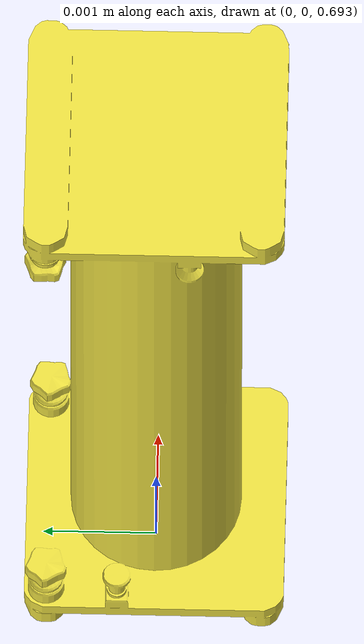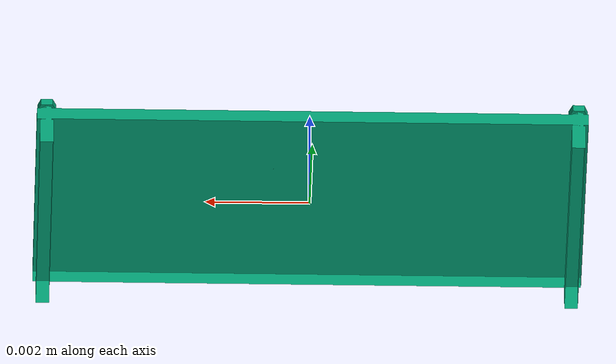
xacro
<?xml version="1.0"?>
<robot>

  <link name="world"/>
  <link name="dummy">
    <inertial>
      <mass value="1"/>
      <inertia ixx="1" ixy="0.0" ixz="0.0" iyy="1" iyz="0.0" izz="1"/>
    </inertial>
  </link>
  <link name="baseplate">
    <visual>
      <geometry>
        <mesh filename="package://r2_description/meshes/Stanchion_Baseplate.dae"/>
      </geometry>
      <origin xyz="0.0 0.0 0.0" rpy="1.57 0 1.57"/>
    </visual>
    <collision>
      <geometry>
        <mesh filename="package://r2_description/meshes/Stanchion_Baseplate.dae" scale=".01 .01 .01"/>
      </geometry>
      <origin xyz="0.0 0.0 0.0" rpy="1.57 0 1.57"/>
    </collision>
    <inertial>
      <mass value="5"/>
      <inertia ixx="1" ixy="0.0" ixz="0.0" iyy="1" iyz="0.0" izz="1"/>
    </inertial>
  </link>

  <link name="base">
    <visual>
      <geometry>
        <mesh filename="package://r2_description/meshes/Stanchion.dae"/>
      </geometry>
      <origin xyz="0.0 0.0 0.0" rpy="0 0 0"/>
    </visual>
    <collision>
      <geometry>
        <cylinder length="0.5" radius=".075"/>
      </geometry>
      <origin xyz="0.0 0.0 -0.3" rpy="0 0 0"/>
    </collision>
    <inertial>
      <mass value="50"/>
      <inertia ixx="10" ixy="0.0" ixz="0.0" iyy="10" iyz="0.0" izz="10"/>
    </inertial>
  </link>

  <joint name="world/dummy" type="fixed">
    <parent link="world"/>
    <child link="dummy"/>
    <origin rpy="0.0 0 0" xyz="0.0 0.0 0.0"/>
  </joint>

  <joint name="base/b0" type="fixed">
    <parent link="dummy"/>
    <child link="baseplate"/>
    <origin rpy="0.0 0 1.57" xyz="0.0 0.0 0.0"/>
  </joint>
  <joint name="base/b1" type="fixed">
    <parent link="baseplate"/>
    <child link="base"/>
    <origin rpy="0 0 3.14" xyz="0.0 0.0 .70"/>
  </joint>

</robot>
